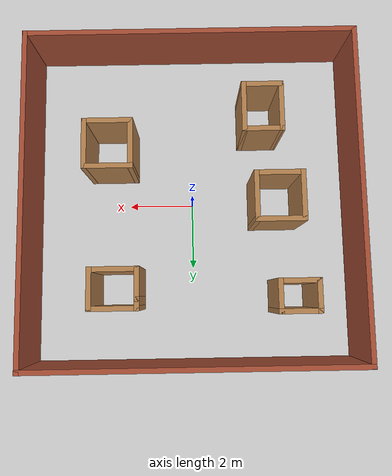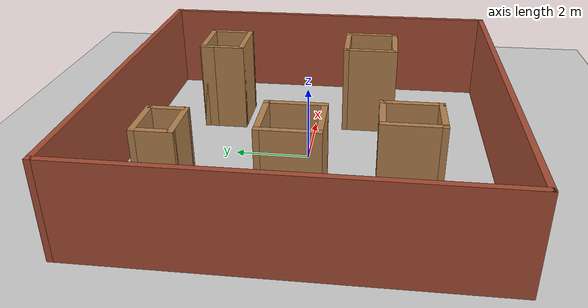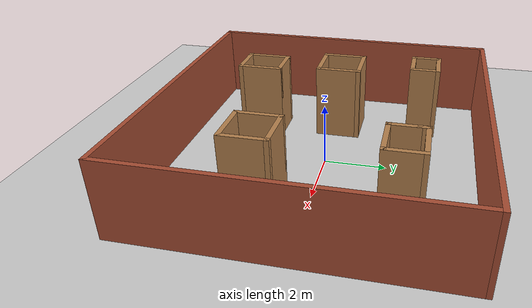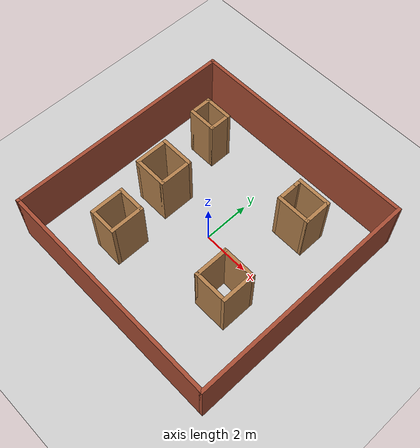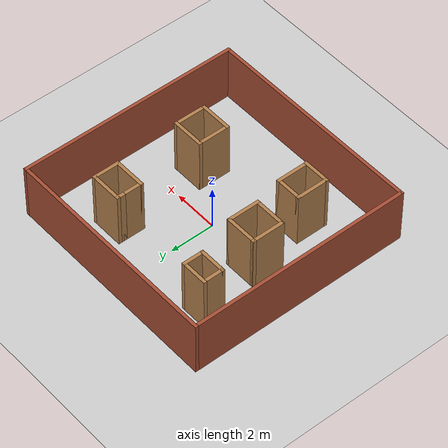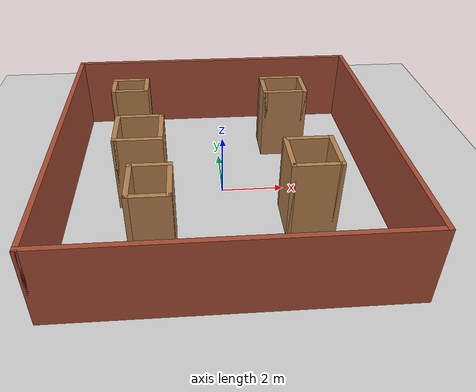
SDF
<sdf version="1.7">
 <world name="default">
  <light name="sun" type="directional">
   <pose>0 0 10 0 -0 0</pose>
   <diffuse>0.8 0.8 0.8 1</diffuse>
   <specular>0.2 0.2 0.2 1</specular>
   <attenuation>
    <range>1000</range>
    <constant>0.9</constant>
    <linear>0.01</linear>
    <quadratic>0.001</quadratic>
   </attenuation>
   <direction>-0.5 0.1 -0.9</direction>
   <spot><inner_angle>0</inner_angle><outer_angle>0</outer_angle><falloff>0</falloff></spot>
  </light>
  <model name="ground_plane">
   <static>1</static>
   <link name="link">
    <collision name="collision">
     <geometry><plane><normal>0 0 1</normal><size>100 100</size></plane></geometry>
     <surface>
      <contact><collide_bitmask>65535</collide_bitmask></contact>
      <friction><ode><mu>100</mu><mu2>50</mu2></ode></friction>
     </surface>
    </collision>
    <visual name="visual">
     <cast_shadows>0</cast_shadows>
     <geometry><plane><normal>0 0 1</normal><size>100 100</size></plane></geometry>
     <material>
      <script><uri>file://media/materials/scripts/gazebo.material</uri><name>Gazebo/Grey</name></script>
     </material>
    </visual>
   </link>
  </model>
  <gravity>0 0 -9.8</gravity>
  <magnetic_field>6e-06 2.3e-05 -4.2e-05</magnetic_field>
  <atmosphere type="adiabatic"/>
  <physics type="ode">
   <max_step_size>0.001</max_step_size>
   <real_time_factor>1</real_time_factor>
   <real_time_update_rate>1000</real_time_update_rate>
  </physics>
  <scene><ambient>0.4 0.4 0.4 1</ambient><background>0.7 0.7 0.7 1</background><shadows>1</shadows></scene>
  <spherical_coordinates>
   <surface_model>EARTH_WGS84</surface_model>
   <latitude_deg>0</latitude_deg>
   <longitude_deg>0</longitude_deg>
   <elevation>0</elevation>
   <heading_deg>0</heading_deg>
  </spherical_coordinates>
  <model name="world">
   <pose>0.005897 -0.018556 0 0 -0 0</pose>
   <link name="Wall_0">
    <collision name="Wall_0_Collision">
     <geometry><box><size>10 0.15 2.5</size></box></geometry>
     <pose>0 0 1.25 0 -0 0</pose>
    </collision>
    <visual name="Wall_0_Visual">
     <pose>0 0 1.25 0 -0 0</pose>
     <geometry><box><size>10 0.15 2.5</size></box></geometry>
     <material>
      <script><uri>file://media/materials/scripts/gazebo.material</uri><name>Gazebo/Bricks</name></script>
      <ambient>1 1 1 1</ambient>
     </material>
     <meta><layer>0</layer></meta>
    </visual>
    <pose>0 -4.925 0 0 -0 0</pose>
   </link>
   <link name="Wall_10">
    <collision name="Wall_10_Collision">
     <geometry><box><size>1 0.15 2.5</size></box></geometry>
     <pose>0 0 1.25 0 -0 0</pose>
    </collision>
    <visual name="Wall_10_Visual">
     <pose>0 0 1.25 0 -0 0</pose>
     <geometry><box><size>1 0.15 2.5</size></box></geometry>
     <material>
      <script><uri>file://media/materials/scripts/gazebo.material</uri><name>Gazebo/Wood</name></script>
      <ambient>1 1 1 1</ambient>
     </material>
     <meta><layer>0</layer></meta>
    </visual>
    <pose>-2.43931 2.95565 0 0 -0 1.5708</pose>
   </link>
   <link name="Wall_11">
    <collision name="Wall_11_Collision">
     <geometry><box><size>1.25 0.15 2.5</size></box></geometry>
     <pose>0 0 1.25 0 -0 0</pose>
    </collision>
    <visual name="Wall_11_Visual">
     <pose>0 0 1.25 0 -0 0</pose>
     <geometry><box><size>1.25 0.15 2.5</size></box></geometry>
     <material>
      <script><uri>file://media/materials/scripts/gazebo.material</uri><name>Gazebo/Wood</name></script>
      <ambient>1 1 1 1</ambient>
     </material>
     <meta><layer>0</layer></meta>
    </visual>
    <pose>-2.98931 3.38065 0 0 -0 3.14159</pose>
   </link>
   <link name="Wall_13">
    <collision name="Wall_13_Collision">
     <geometry><box><size>1.5 0.15 2.5</size></box></geometry>
     <pose>0 0 1.25 0 -0 0</pose>
    </collision>
    <visual name="Wall_13_Visual">
     <pose>0 0 1.25 0 -0 0</pose>
     <geometry><box><size>1.5 0.15 2.5</size></box></geometry>
     <material>
      <script><uri>file://media/materials/scripts/gazebo.material</uri><name>Gazebo/Wood</name></script>
      <ambient>1 1 1 1</ambient>
     </material>
     <meta><layer>0</layer></meta>
    </visual>
    <pose>-2.66617 -2.56502 0 0 -0 1.5708</pose>
   </link>
   <link name="Wall_14">
    <collision name="Wall_14_Collision">
     <geometry><box><size>1.25 0.15 2.5</size></box></geometry>
     <pose>0 0 1.25 0 -0 0</pose>
    </collision>
    <visual name="Wall_14_Visual">
     <pose>0 0 1.25 0 -0 0</pose>
     <geometry><box><size>1.25 0.15 2.5</size></box></geometry>
     <material>
      <script><uri>file://media/materials/scripts/gazebo.material</uri><name>Gazebo/Wood</name></script>
      <ambient>1 1 1 1</ambient>
     </material>
     <meta><layer>0</layer></meta>
    </visual>
    <pose>-2.11617 -1.89002 0 0 -0 0</pose>
   </link>
   <link name="Wall_15">
    <collision name="Wall_15_Collision">
     <geometry><box><size>1.5 0.15 2.5</size></box></geometry>
     <pose>0 0 1.25 0 -0 0</pose>
    </collision>
    <visual name="Wall_15_Visual">
     <pose>0 0 1.25 0 -0 0</pose>
     <geometry><box><size>1.5 0.15 2.5</size></box></geometry>
     <material>
      <script><uri>file://media/materials/scripts/gazebo.material</uri><name>Gazebo/Wood</name></script>
      <ambient>1 1 1 1</ambient>
     </material>
     <meta><layer>0</layer></meta>
    </visual>
    <pose>-1.56617 -2.56502 0 0 -0 -1.5708</pose>
   </link>
   <link name="Wall_16">
    <collision name="Wall_16_Collision">
     <geometry><box><size>1.25 0.15 2.5</size></box></geometry>
     <pose>0 0 1.25 0 -0 0</pose>
    </collision>
    <visual name="Wall_16_Visual">
     <pose>0 0 1.25 0 -0 0</pose>
     <geometry><box><size>1.25 0.15 2.5</size></box></geometry>
     <material>
      <script><uri>file://media/materials/scripts/gazebo.material</uri><name>Gazebo/Wood</name></script>
      <ambient>1 1 1 1</ambient>
     </material>
     <meta><layer>0</layer></meta>
    </visual>
    <pose>-2.11617 -3.24002 0 0 -0 3.14159</pose>
   </link>
   <link name="Wall_18">
    <collision name="Wall_18_Collision">
     <geometry><box><size>1 0.15 2.5</size></box></geometry>
     <pose>0 0 1.25 0 -0 0</pose>
    </collision>
    <visual name="Wall_18_Visual">
     <pose>0 0 1.25 0 -0 0</pose>
     <geometry><box><size>1 0.15 2.5</size></box></geometry>
     <material>
      <script><uri>file://media/materials/scripts/gazebo.material</uri><name>Gazebo/Wood</name></script>
      <ambient>1 1 1 1</ambient>
     </material>
     <meta><layer>0</layer></meta>
    </visual>
    <pose>1.6097 2.55265 0 0 -0 -1.5708</pose>
   </link>
   <link name="Wall_19">
    <collision name="Wall_19_Collision">
     <geometry><box><size>1.5 0.15 2.5</size></box></geometry>
     <pose>0 0 1.25 0 -0 0</pose>
    </collision>
    <visual name="Wall_19_Visual">
     <pose>0 0 1.25 0 -0 0</pose>
     <geometry><box><size>1.5 0.15 2.5</size></box></geometry>
     <material>
      <script><uri>file://media/materials/scripts/gazebo.material</uri><name>Gazebo/Wood</name></script>
      <ambient>1 1 1 1</ambient>
     </material>
     <meta><layer>0</layer></meta>
    </visual>
    <pose>2.2847 2.12765 0 0 -0 0</pose>
   </link>
   <link name="Wall_20">
    <collision name="Wall_20_Collision">
     <geometry><box><size>1.25 0.15 2.5</size></box></geometry>
     <pose>0 0 1.25 0 -0 0</pose>
    </collision>
    <visual name="Wall_20_Visual">
     <pose>0 0 1.25 0 -0 0</pose>
     <geometry><box><size>1.25 0.15 2.5</size></box></geometry>
     <material>
      <script><uri>file://media/materials/scripts/gazebo.material</uri><name>Gazebo/Wood</name></script>
      <ambient>1 1 1 1</ambient>
     </material>
     <meta><layer>0</layer></meta>
    </visual>
    <pose>2.9597 2.67765 0 0 -0 1.5708</pose>
   </link>
   <link name="Wall_21">
    <collision name="Wall_21_Collision">
     <geometry><box><size>1.5 0.15 2.5</size></box></geometry>
     <pose>0 0 1.25 0 -0 0</pose>
    </collision>
    <visual name="Wall_21_Visual">
     <pose>0 0 1.25 0 -0 0</pose>
     <geometry><box><size>1.5 0.15 2.5</size></box></geometry>
     <material>
      <script><uri>file://media/materials/scripts/gazebo.material</uri><name>Gazebo/Wood</name></script>
      <ambient>1 1 1 1</ambient>
     </material>
     <meta><layer>0</layer></meta>
    </visual>
    <pose>2.2847 3.22765 0 0 -0 3.14159</pose>
   </link>
   <link name="Wall_22">
    <collision name="Wall_22_Collision">
     <geometry><box><size>0.4 0.15 2.5</size></box></geometry>
     <pose>0 0 1.25 0 -0 0</pose>
    </collision>
    <visual name="Wall_22_Visual">
     <pose>0 0 1.25 0 -0 0</pose>
     <geometry><box><size>0.4 0.15 2.5</size></box></geometry>
     <material>
      <script><uri>file://media/materials/scripts/gazebo.material</uri><name>Gazebo/Wood</name></script>
      <ambient>1 1 1 1</ambient>
     </material>
     <meta><layer>0</layer></meta>
    </visual>
    <pose>1.6097 3.10265 0 0 -0 -1.5708</pose>
   </link>
   <link name="Wall_24">
    <collision name="Wall_24_Collision">
     <geometry><box><size>1.5 0.15 2.5</size></box></geometry>
     <pose>0 0 1.25 0 -0 0</pose>
    </collision>
    <visual name="Wall_24_Visual">
     <pose>0 0 1.25 0 -0 0</pose>
     <geometry><box><size>1.5 0.15 2.5</size></box></geometry>
     <material>
      <script><uri>file://media/materials/scripts/gazebo.material</uri><name>Gazebo/Wood</name></script>
      <ambient>1 1 1 1</ambient>
     </material>
     <meta><layer>0</layer></meta>
    </visual>
    <pose>2.46123 -2.20047 0 0 -0 0</pose>
   </link>
   <link name="Wall_25">
    <collision name="Wall_25_Collision">
     <geometry><box><size>1.5 0.15 2.5</size></box></geometry>
     <pose>0 0 1.25 0 -0 0</pose>
    </collision>
    <visual name="Wall_25_Visual">
     <pose>0 0 1.25 0 -0 0</pose>
     <geometry><box><size>1.5 0.15 2.5</size></box></geometry>
     <material>
      <script><uri>file://media/materials/scripts/gazebo.material</uri><name>Gazebo/Wood</name></script>
      <ambient>1 1 1 1</ambient>
     </material>
     <meta><layer>0</layer></meta>
    </visual>
    <pose>3.13623 -1.52547 0 0 -0 1.5708</pose>
   </link>
   <link name="Wall_26">
    <collision name="Wall_26_Collision">
     <geometry><box><size>1.5 0.15 2.5</size></box></geometry>
     <pose>0 0 1.25 0 -0 0</pose>
    </collision>
    <visual name="Wall_26_Visual">
     <pose>0 0 1.25 0 -0 0</pose>
     <geometry><box><size>1.5 0.15 2.5</size></box></geometry>
     <material>
      <script><uri>file://media/materials/scripts/gazebo.material</uri><name>Gazebo/Wood</name></script>
      <ambient>1 1 1 1</ambient>
     </material>
     <meta><layer>0</layer></meta>
    </visual>
    <pose>2.46123 -0.850472 0 0 -0 3.14159</pose>
   </link>
   <link name="Wall_27">
    <collision name="Wall_27_Collision">
     <geometry><box><size>1.5 0.15 2.5</size></box></geometry>
     <pose>0 0 1.25 0 -0 0</pose>
    </collision>
    <visual name="Wall_27_Visual">
     <pose>0 0 1.25 0 -0 0</pose>
     <geometry><box><size>1.5 0.15 2.5</size></box></geometry>
     <material>
      <script><uri>file://media/materials/scripts/gazebo.material</uri><name>Gazebo/Wood</name></script>
      <ambient>1 1 1 1</ambient>
     </material>
     <meta><layer>0</layer></meta>
    </visual>
    <pose>1.78623 -1.52547 0 0 -0 -1.5708</pose>
   </link>
   <link name="Wall_37">
    <collision name="Wall_37_Collision">
     <geometry><box><size>1.5 0.15 2.5</size></box></geometry>
     <pose>0 0 1.25 0 -0 0</pose>
    </collision>
    <visual name="Wall_37_Visual">
     <pose>0 0 1.25 0 -0 0</pose>
     <geometry><box><size>1.5 0.15 2.5</size></box></geometry>
     <material>
      <script><uri>file://media/materials/scripts/gazebo.material</uri><name>Gazebo/Wood</name></script>
      <ambient>1 1 1 1</ambient>
     </material>
     <meta><layer>0</layer></meta>
    </visual>
    <pose>-3.2157 0.095548 0 0 -0 -1.5708</pose>
   </link>
   <link name="Wall_38">
    <collision name="Wall_38_Collision">
     <geometry><box><size>1.5 0.15 2.5</size></box></geometry>
     <pose>0 0 1.25 0 -0 0</pose>
    </collision>
    <visual name="Wall_38_Visual">
     <pose>0 0 1.25 0 -0 0</pose>
     <geometry><box><size>1.5 0.15 2.5</size></box></geometry>
     <material>
      <script><uri>file://media/materials/scripts/gazebo.material</uri><name>Gazebo/Wood</name></script>
      <ambient>1 1 1 1</ambient>
     </material>
     <meta><layer>0</layer></meta>
    </visual>
    <pose>-2.5407 -0.579452 0 0 -0 0</pose>
   </link>
   <link name="Wall_39">
    <collision name="Wall_39_Collision">
     <geometry><box><size>1.5 0.15 2.5</size></box></geometry>
     <pose>0 0 1.25 0 -0 0</pose>
    </collision>
    <visual name="Wall_39_Visual">
     <pose>0 0 1.25 0 -0 0</pose>
     <geometry><box><size>1.5 0.15 2.5</size></box></geometry>
     <material>
      <script><uri>file://media/materials/scripts/gazebo.material</uri><name>Gazebo/Wood</name></script>
      <ambient>1 1 1 1</ambient>
     </material>
     <meta><layer>0</layer></meta>
    </visual>
    <pose>-1.8657 0.095548 0 0 -0 1.5708</pose>
   </link>
   <link name="Wall_4">
    <collision name="Wall_4_Collision">
     <geometry><box><size>10 0.15 2.5</size></box></geometry>
     <pose>0 0 1.25 0 -0 0</pose>
    </collision>
    <visual name="Wall_4_Visual">
     <pose>0 0 1.25 0 -0 0</pose>
     <geometry><box><size>10 0.15 2.5</size></box></geometry>
     <material>
      <script><uri>file://media/materials/scripts/gazebo.material</uri><name>Gazebo/Bricks</name></script>
      <ambient>1 1 1 1</ambient>
     </material>
     <meta><layer>0</layer></meta>
    </visual>
    <pose>4.925 -0 0 0 -0 1.5708</pose>
   </link>
   <link name="Wall_40">
    <collision name="Wall_40_Collision">
     <geometry><box><size>1.5 0.15 2.5</size></box></geometry>
     <pose>0 0 1.25 0 -0 0</pose>
    </collision>
    <visual name="Wall_40_Visual">
     <pose>0 0 1.25 0 -0 0</pose>
     <geometry><box><size>1.5 0.15 2.5</size></box></geometry>
     <material>
      <script><uri>file://media/materials/scripts/gazebo.material</uri><name>Gazebo/Wood</name></script>
      <ambient>1 1 1 1</ambient>
     </material>
     <meta><layer>0</layer></meta>
    </visual>
    <pose>-2.5407 0.770548 0 0 -0 3.14159</pose>
   </link>
   <link name="Wall_5">
    <collision name="Wall_5_Collision">
     <geometry><box><size>10 0.15 2.5</size></box></geometry>
     <pose>0 0 1.25 0 -0 0</pose>
    </collision>
    <visual name="Wall_5_Visual">
     <pose>0 0 1.25 0 -0 0</pose>
     <geometry><box><size>10 0.15 2.5</size></box></geometry>
     <material>
      <script><uri>file://media/materials/scripts/gazebo.material</uri><name>Gazebo/Bricks</name></script>
      <ambient>1 1 1 1</ambient>
     </material>
     <meta><layer>0</layer></meta>
    </visual>
    <pose>0 4.925 0 0 -0 3.14159</pose>
   </link>
   <link name="Wall_6">
    <collision name="Wall_6_Collision">
     <geometry><box><size>10 0.15 2.5</size></box></geometry>
     <pose>0 0 1.25 0 -0 0</pose>
    </collision>
    <visual name="Wall_6_Visual">
     <pose>0 0 1.25 0 -0 0</pose>
     <geometry><box><size>10 0.15 2.5</size></box></geometry>
     <material>
      <script><uri>file://media/materials/scripts/gazebo.material</uri><name>Gazebo/Bricks</name></script>
      <ambient>1 1 1 1</ambient>
     </material>
     <meta><layer>0</layer></meta>
    </visual>
    <pose>-4.925 -0 0 0 -0 -1.5708</pose>
   </link>
   <link name="Wall_8">
    <collision name="Wall_8_Collision">
     <geometry><box><size>1 0.15 2.5</size></box></geometry>
     <pose>0 0 1.25 0 -0 0</pose>
    </collision>
    <visual name="Wall_8_Visual">
     <pose>0 0 1.25 0 -0 0</pose>
     <geometry><box><size>1 0.15 2.5</size></box></geometry>
     <material>
      <script><uri>file://media/materials/scripts/gazebo.material</uri><name>Gazebo/Wood</name></script>
      <ambient>1 1 1 1</ambient>
     </material>
     <meta><layer>0</layer></meta>
    </visual>
    <pose>-3.53931 2.95565 0 0 -0 -1.5708</pose>
   </link>
   <link name="Wall_9">
    <collision name="Wall_9_Collision">
     <geometry><box><size>1.25 0.15 2.5</size></box></geometry>
     <pose>0 0 1.25 0 -0 0</pose>
    </collision>
    <visual name="Wall_9_Visual">
     <pose>0 0 1.25 0 -0 0</pose>
     <geometry><box><size>1.25 0.15 2.5</size></box></geometry>
     <material>
      <script><uri>file://media/materials/scripts/gazebo.material</uri><name>Gazebo/Wood</name></script>
      <ambient>1 1 1 1</ambient>
     </material>
     <meta><layer>0</layer></meta>
    </visual>
    <pose>-2.98931 2.53065 0 0 -0 0</pose>
   </link>
   <static>1</static>
  </model>
 </world>
</sdf>
